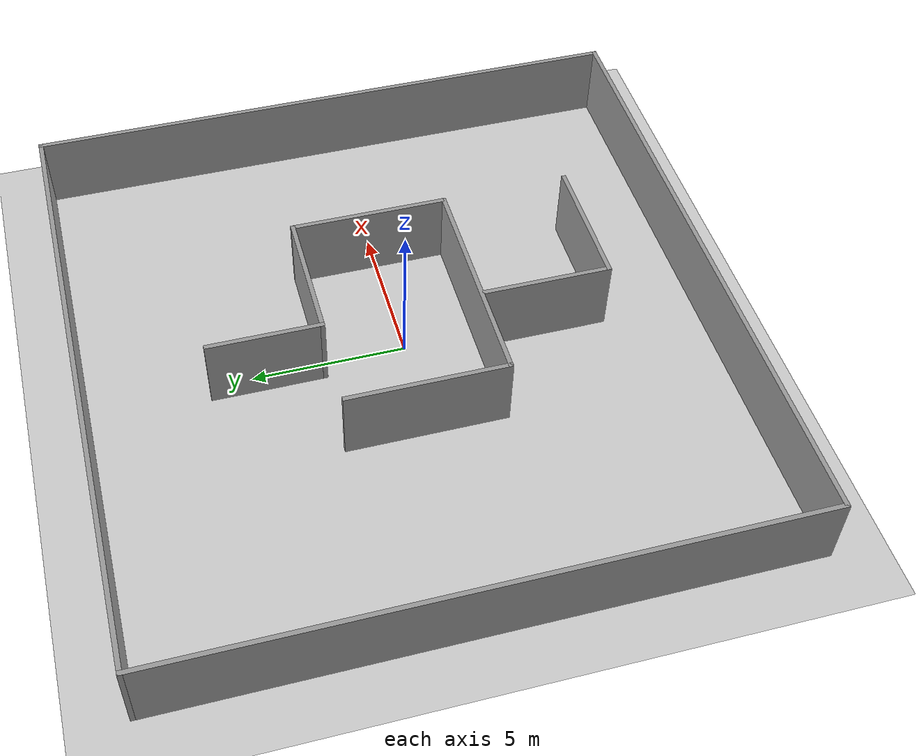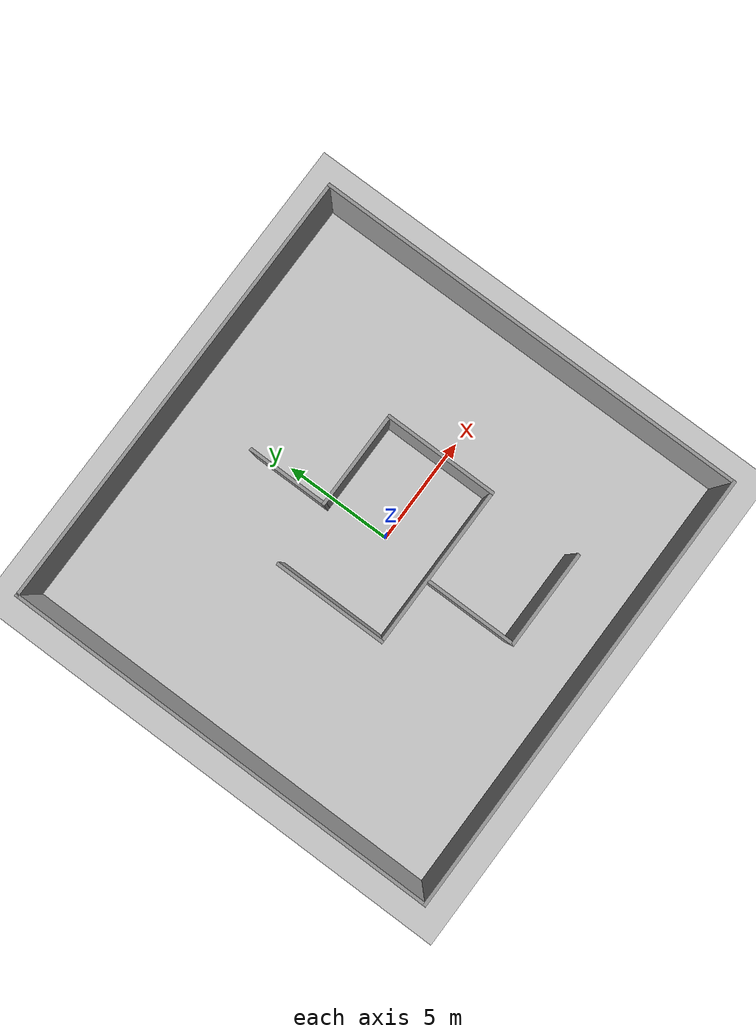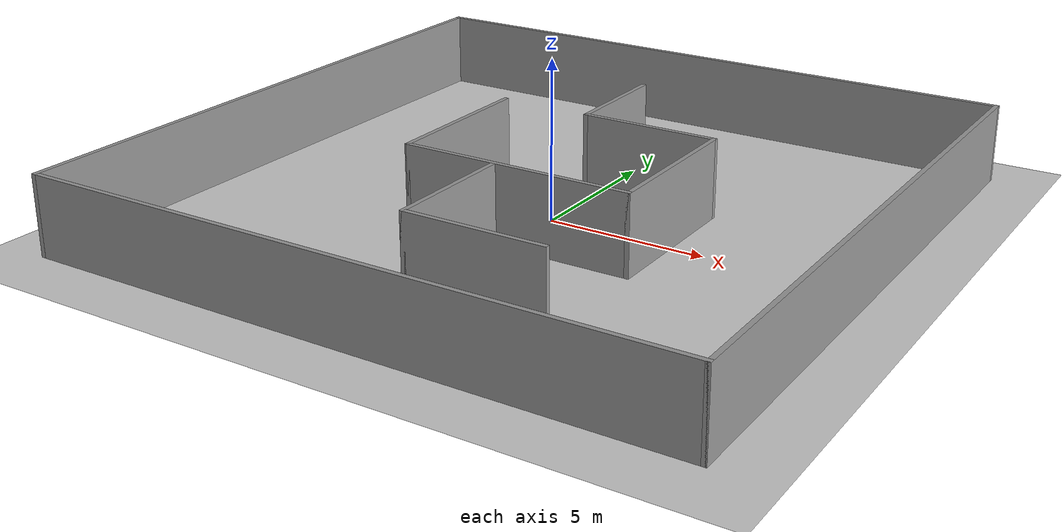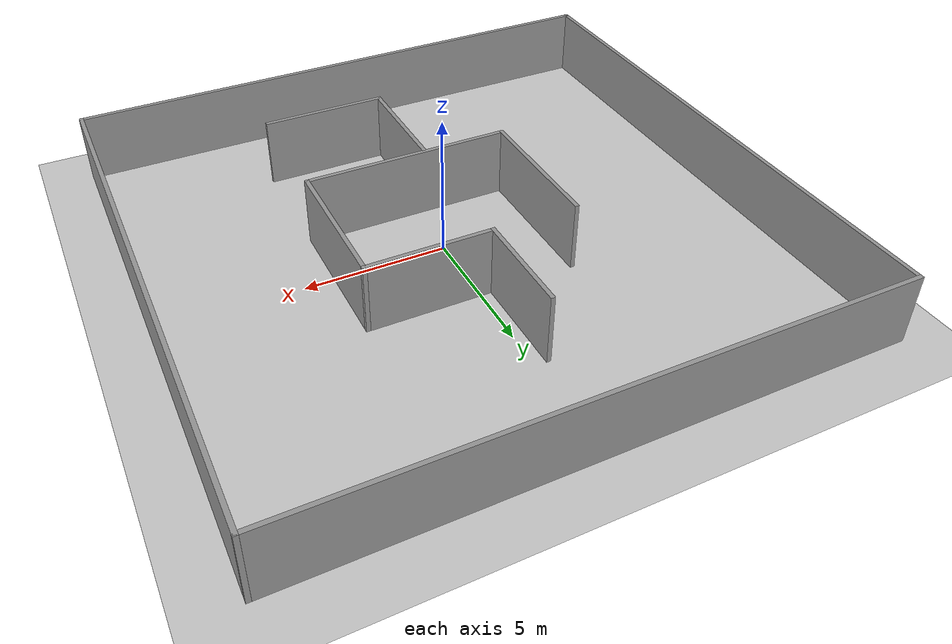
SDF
<sdf version="1.7">
 <world name="default">
  <light name="sun" type="directional">
   <pose>0 0 10 0 -0 0</pose>
   <diffuse>0.8 0.8 0.8 1</diffuse>
   <specular>0.2 0.2 0.2 1</specular>
   <attenuation>
    <range>1000</range>
    <constant>0.9</constant>
    <linear>0.01</linear>
    <quadratic>0.001</quadratic>
   </attenuation>
   <direction>-0.5 0.1 -0.9</direction>
   <spot><inner_angle>0</inner_angle><outer_angle>0</outer_angle><falloff>0</falloff></spot>
  </light>
  <model name="ground_plane">
   <static>1</static>
   <link name="link">
    <collision name="collision">
     <geometry><plane><normal>0 0 1</normal><size>100 100</size></plane></geometry>
     <surface>
      <contact><collide_bitmask>65535</collide_bitmask></contact>
      <friction><ode><mu>100</mu><mu2>50</mu2></ode></friction>
     </surface>
    </collision>
    <visual name="visual">
     <cast_shadows>0</cast_shadows>
     <geometry><plane><normal>0 0 1</normal><size>100 100</size></plane></geometry>
     <material>
      <script><uri>file://media/materials/scripts/gazebo.material</uri><name>Gazebo/Grey</name></script>
     </material>
    </visual>
   </link>
  </model>
  <gravity>0 0 -9.8</gravity>
  <magnetic_field>6e-06 2.3e-05 -4.2e-05</magnetic_field>
  <atmosphere type="adiabatic"/>
  <physics type="ode">
   <max_step_size>0.001</max_step_size>
   <real_time_factor>1</real_time_factor>
   <real_time_update_rate>1000</real_time_update_rate>
  </physics>
  <scene><ambient>0.4 0.4 0.4 1</ambient><background>0.7 0.7 0.7 1</background><shadows>1</shadows></scene>
  <spherical_coordinates>
   <surface_model>EARTH_WGS84</surface_model>
   <latitude_deg>0</latitude_deg>
   <longitude_deg>0</longitude_deg>
   <elevation>0</elevation>
   <heading_deg>0</heading_deg>
  </spherical_coordinates>
  <model name="mapthis">
   <pose>-0.321011 0.232302 0 0 -0 0</pose>
   <link name="Wall_10">
    <collision name="Wall_10_Collision">
     <geometry><box><size>5.25 0.15 2.5</size></box></geometry>
     <pose>0 0 1.25 0 -0 0</pose>
    </collision>
    <visual name="Wall_10_Visual">
     <pose>0 0 1.25 0 -0 0</pose>
     <geometry><box><size>5.25 0.15 2.5</size></box></geometry>
     <material>
      <script><uri>file://media/materials/scripts/gazebo.material</uri><name>Gazebo/Grey</name></script>
      <ambient>1 1 1 1</ambient>
     </material>
     <meta><layer>0</layer></meta>
    </visual>
    <pose>-3.13042 -0.044742 0 0 -0 -1.5708</pose>
   </link>
   <link name="Wall_11">
    <collision name="Wall_11_Collision">
     <geometry><box><size>7.5 0.15 2.5</size></box></geometry>
     <pose>0 0 1.25 0 -0 0</pose>
    </collision>
    <visual name="Wall_11_Visual">
     <pose>0 0 1.25 0 -0 0</pose>
     <geometry><box><size>7.5 0.15 2.5</size></box></geometry>
     <material>
      <script><uri>file://media/materials/scripts/gazebo.material</uri><name>Gazebo/Grey</name></script>
      <ambient>1 1 1 1</ambient>
     </material>
     <meta><layer>0</layer></meta>
    </visual>
    <pose>0.54458 -2.59474 0 0 -0 0</pose>
   </link>
   <link name="Wall_12">
    <collision name="Wall_12_Collision">
     <geometry><box><size>5.25 0.15 2.5</size></box></geometry>
     <pose>0 0 1.25 0 -0 0</pose>
    </collision>
    <visual name="Wall_12_Visual">
     <pose>0 0 1.25 0 -0 0</pose>
     <geometry><box><size>5.25 0.15 2.5</size></box></geometry>
     <material>
      <script><uri>file://media/materials/scripts/gazebo.material</uri><name>Gazebo/Grey</name></script>
      <ambient>1 1 1 1</ambient>
     </material>
     <meta><layer>0</layer></meta>
    </visual>
    <pose>4.21958 -0.044742 0 0 -0 1.5708</pose>
   </link>
   <link name="Wall_13">
    <collision name="Wall_13_Collision">
     <geometry><box><size>4.5 0.15 2.5</size></box></geometry>
     <pose>0 0 1.25 0 -0 0</pose>
    </collision>
    <visual name="Wall_13_Visual">
     <pose>0 0 1.25 0 -0 0</pose>
     <geometry><box><size>4.5 0.15 2.5</size></box></geometry>
     <material>
      <script><uri>file://media/materials/scripts/gazebo.material</uri><name>Gazebo/Grey</name></script>
      <ambient>1 1 1 1</ambient>
     </material>
     <meta><layer>0</layer></meta>
    </visual>
    <pose>2.04458 2.50526 0 0 -0 3.14159</pose>
   </link>
   <link name="Wall_14">
    <collision name="Wall_14_Collision">
     <geometry><box><size>3.75 0.15 2.5</size></box></geometry>
     <pose>0 0 1.25 0 -0 0</pose>
    </collision>
    <visual name="Wall_14_Visual">
     <pose>0 0 1.25 0 -0 0</pose>
     <geometry><box><size>3.75 0.15 2.5</size></box></geometry>
     <material>
      <script><uri>file://media/materials/scripts/gazebo.material</uri><name>Gazebo/Grey</name></script>
      <ambient>1 1 1 1</ambient>
     </material>
     <meta><layer>0</layer></meta>
    </visual>
    <pose>-0.13042 4.30526 0 0 -0 1.5708</pose>
   </link>
   <link name="Wall_16">
    <collision name="Wall_16_Collision">
     <geometry><box><size>4.25 0.15 2.5</size></box></geometry>
     <pose>0 0 1.25 0 -0 0</pose>
    </collision>
    <visual name="Wall_16_Visual">
     <pose>0 0 1.25 0 -0 0</pose>
     <geometry><box><size>4.25 0.15 2.5</size></box></geometry>
     <material>
      <script><uri>file://media/materials/scripts/gazebo.material</uri><name>Gazebo/Grey</name></script>
      <ambient>1 1 1 1</ambient>
     </material>
     <meta><layer>0</layer></meta>
    </visual>
    <pose>-0.106366 -4.75542 0 0 -0 -1.5708</pose>
   </link>
   <link name="Wall_17">
    <collision name="Wall_17_Collision">
     <geometry><box><size>4.5 0.15 2.5</size></box></geometry>
     <pose>0 0 1.25 0 -0 0</pose>
    </collision>
    <visual name="Wall_17_Visual">
     <pose>0 0 1.25 0 -0 0</pose>
     <geometry><box><size>4.5 0.15 2.5</size></box></geometry>
     <material>
      <script><uri>file://media/materials/scripts/gazebo.material</uri><name>Gazebo/Grey</name></script>
      <ambient>1 1 1 1</ambient>
     </material>
     <meta><layer>0</layer></meta>
    </visual>
    <pose>2.06863 -6.80542 0 0 -0 0</pose>
   </link>
   <link name="Wall_5">
    <collision name="Wall_5_Collision">
     <geometry><box><size>20.75 0.15 2.5</size></box></geometry>
     <pose>0 0 1.25 0 -0 0</pose>
    </collision>
    <visual name="Wall_5_Visual">
     <pose>0 0 1.25 0 -0 0</pose>
     <geometry><box><size>20.75 0.15 2.5</size></box></geometry>
     <material>
      <script><uri>file://media/materials/scripts/gazebo.material</uri><name>Gazebo/Grey</name></script>
      <ambient>1 1 1 1</ambient>
     </material>
     <meta><layer>0</layer></meta>
    </visual>
    <pose>-0 -10.05 0 0 -0 0</pose>
   </link>
   <link name="Wall_6">
    <collision name="Wall_6_Collision">
     <geometry><box><size>20.25 0.15 2.5</size></box></geometry>
     <pose>0 0 1.25 0 -0 0</pose>
    </collision>
    <visual name="Wall_6_Visual">
     <pose>0 0 1.25 0 -0 0</pose>
     <geometry><box><size>20.25 0.15 2.5</size></box></geometry>
     <material>
      <script><uri>file://media/materials/scripts/gazebo.material</uri><name>Gazebo/Grey</name></script>
      <ambient>1 1 1 1</ambient>
     </material>
     <meta><layer>0</layer></meta>
    </visual>
    <pose>10.3 0 0 0 -0 1.5708</pose>
   </link>
   <link name="Wall_7">
    <collision name="Wall_7_Collision">
     <geometry><box><size>20.75 0.15 2.5</size></box></geometry>
     <pose>0 0 1.25 0 -0 0</pose>
    </collision>
    <visual name="Wall_7_Visual">
     <pose>0 0 1.25 0 -0 0</pose>
     <geometry><box><size>20.75 0.15 2.5</size></box></geometry>
     <material>
      <script><uri>file://media/materials/scripts/gazebo.material</uri><name>Gazebo/Grey</name></script>
      <ambient>1 1 1 1</ambient>
     </material>
     <meta><layer>0</layer></meta>
    </visual>
    <pose>-0 10.05 0 0 -0 3.14159</pose>
   </link>
   <link name="Wall_8">
    <collision name="Wall_8_Collision">
     <geometry><box><size>20.25 0.15 2.5</size></box></geometry>
     <pose>0 0 1.25 0 -0 0</pose>
    </collision>
    <visual name="Wall_8_Visual">
     <pose>0 0 1.25 0 -0 0</pose>
     <geometry><box><size>20.25 0.15 2.5</size></box></geometry>
     <material>
      <script><uri>file://media/materials/scripts/gazebo.material</uri><name>Gazebo/Grey</name></script>
      <ambient>1 1 1 1</ambient>
     </material>
     <meta><layer>0</layer></meta>
    </visual>
    <pose>-10.3 0 0 0 -0 -1.5708</pose>
   </link>
   <static>1</static>
  </model>
 </world>
</sdf>
